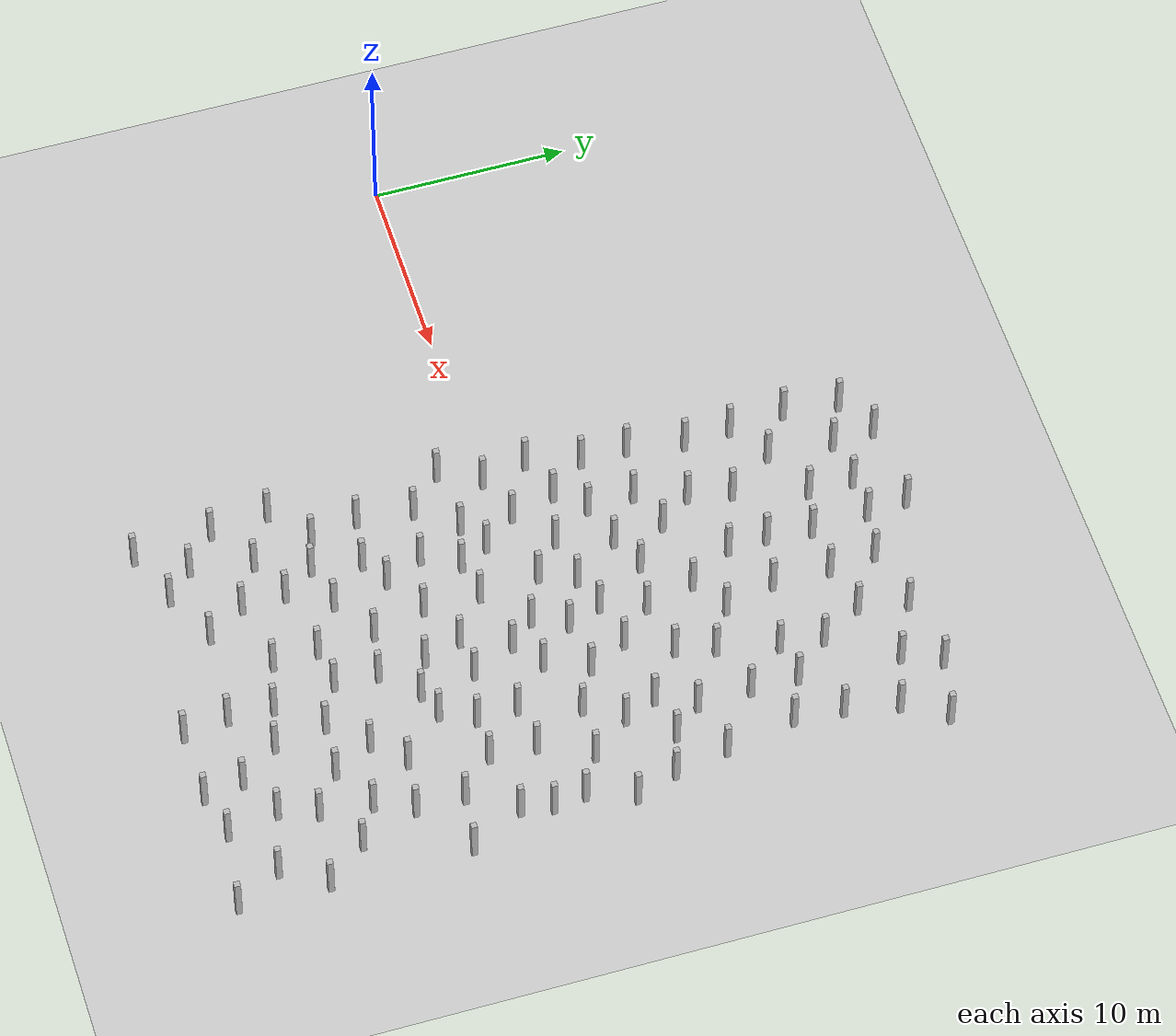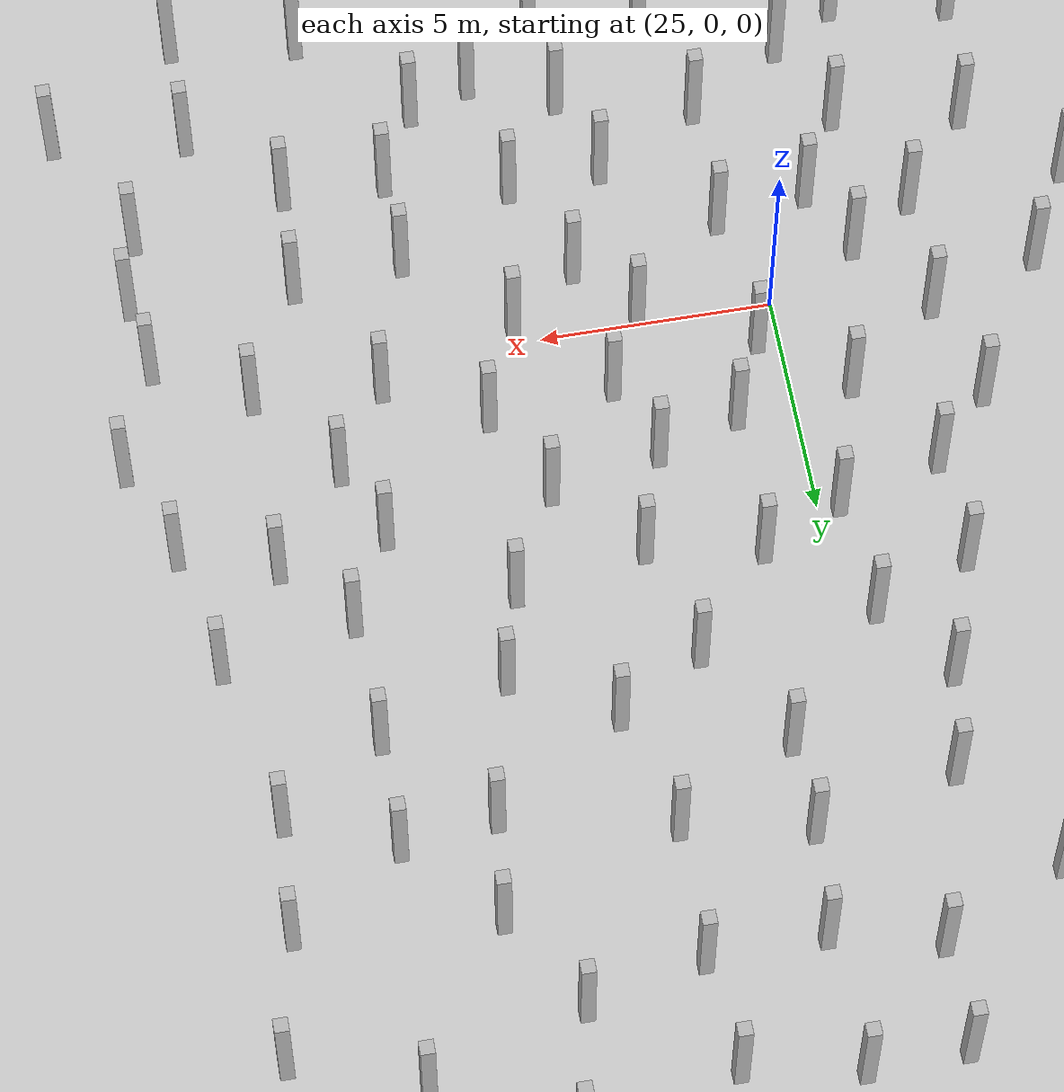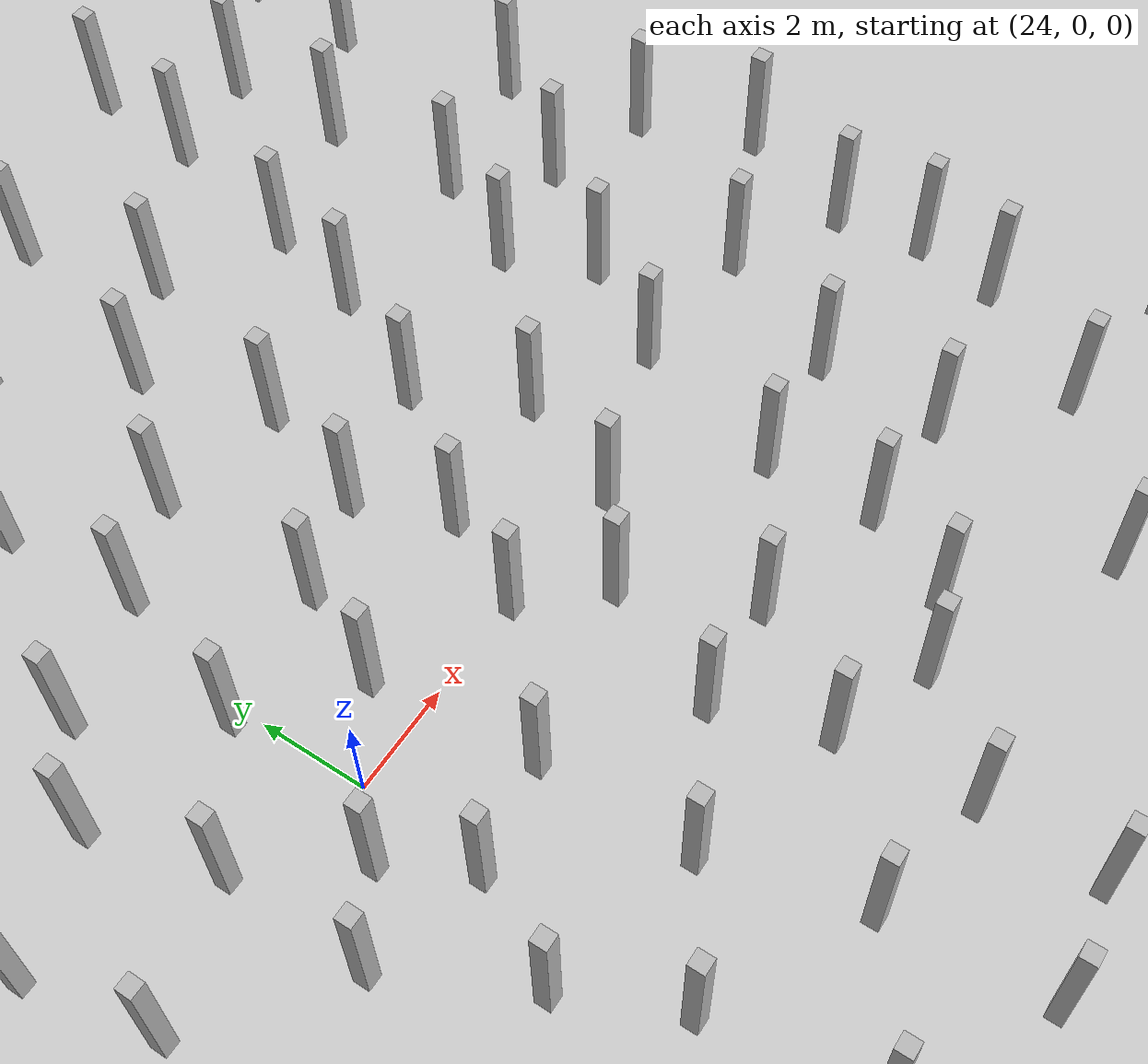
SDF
<sdf version="1.7">
 <world name="random_boxes_100x40_600">
  <model name="ground_plane">
   <static>1</static>
   <link name="link">
    <collision name="collision">
     <geometry><plane><normal>0 0 1</normal><size>100 100</size></plane></geometry>
     <surface><friction><ode><mu>100</mu><mu2>50</mu2></ode></friction></surface>
    </collision>
    <visual name="visual">
     <cast_shadows>0</cast_shadows>
     <geometry><plane><normal>0 0 1</normal><size>100 100</size></plane></geometry>
     <material>
      <script><uri>file://media/materials/scripts/gazebo.material</uri><name>Gazebo/Grey</name></script>
     </material>
    </visual>
   </link>
  </model>
  <model name="box_1">
   <static>1</static>
   <pose>23.067 9.463 1.25 0 -0 0</pose>
   <link name="link">
    <visual name="visual"><geometry><box><size>0.3 0.3 2.5</size></box></geometry></visual>
    <collision name="collision"><geometry><box><size>0.3 0.3 2.5</size></box></geometry></collision>
   </link>
  </model>
  <model name="box_3">
   <static>1</static>
   <pose>19.4562 5.02635 1.25 0 -0 0</pose>
   <link name="link">
    <visual name="visual"><geometry><box><size>0.3 0.3 2.5</size></box></geometry></visual>
    <collision name="collision"><geometry><box><size>0.3 0.3 2.5</size></box></geometry></collision>
   </link>
  </model>
  <model name="box_4">
   <static>1</static>
   <pose>19.4371 7.41929 1.25 0 -0 0</pose>
   <link name="link">
    <visual name="visual"><geometry><box><size>0.3 0.3 2.5</size></box></geometry></visual>
    <collision name="collision"><geometry><box><size>0.3 0.3 2.5</size></box></geometry></collision>
   </link>
  </model>
  <model name="box_5">
   <static>1</static>
   <pose>24.3431 7.76554 1.25 0 -0 0</pose>
   <link name="link">
    <visual name="visual"><geometry><box><size>0.3 0.3 2.5</size></box></geometry></visual>
    <collision name="collision"><geometry><box><size>0.3 0.3 2.5</size></box></geometry></collision>
   </link>
  </model>
  <model name="box_7">
   <static>1</static>
   <pose>23.516 11.668 1.25 0 -0 0</pose>
   <link name="link">
    <visual name="visual"><geometry><box><size>0.3 0.3 2.5</size></box></geometry></visual>
    <collision name="collision"><geometry><box><size>0.3 0.3 2.5</size></box></geometry></collision>
   </link>
  </model>
  <model name="box_8">
   <static>1</static>
   <pose>26.659 10.443 1.25 0 -0 0</pose>
   <link name="link">
    <visual name="visual"><geometry><box><size>0.3 0.3 2.5</size></box></geometry></visual>
    <collision name="collision"><geometry><box><size>0.3 0.3 2.5</size></box></geometry></collision>
   </link>
  </model>
  <model name="box_11">
   <static>1</static>
   <pose>22.2258 6.90257 1.25 0 -0 0</pose>
   <link name="link">
    <visual name="visual"><geometry><box><size>0.3 0.3 2.5</size></box></geometry></visual>
    <collision name="collision"><geometry><box><size>0.3 0.3 2.5</size></box></geometry></collision>
   </link>
  </model>
  <model name="box_12">
   <static>1</static>
   <pose>21.83 14.069 1.25 0 -0 0</pose>
   <link name="link">
    <visual name="visual"><geometry><box><size>0.3 0.3 2.5</size></box></geometry></visual>
    <collision name="collision"><geometry><box><size>0.3 0.3 2.5</size></box></geometry></collision>
   </link>
  </model>
  <model name="box_14">
   <static>1</static>
   <pose>19.557 15.617 1.25 0 -0 0</pose>
   <link name="link">
    <visual name="visual"><geometry><box><size>0.3 0.3 2.5</size></box></geometry></visual>
    <collision name="collision"><geometry><box><size>0.3 0.3 2.5</size></box></geometry></collision>
   </link>
  </model>
  <model name="box_17">
   <static>1</static>
   <pose>28.119 8.132 1.25 0 -0 0</pose>
   <link name="link">
    <visual name="visual"><geometry><box><size>0.3 0.3 2.5</size></box></geometry></visual>
    <collision name="collision"><geometry><box><size>0.3 0.3 2.5</size></box></geometry></collision>
   </link>
  </model>
  <model name="box_18">
   <static>1</static>
   <pose>21.0305 3.09446 1.25 0 -0 0</pose>
   <link name="link">
    <visual name="visual"><geometry><box><size>0.3 0.3 2.5</size></box></geometry></visual>
    <collision name="collision"><geometry><box><size>0.3 0.3 2.5</size></box></geometry></collision>
   </link>
  </model>
  <model name="box_19">
   <static>1</static>
   <pose>19.852 18.463 1.25 0 -0 0</pose>
   <link name="link">
    <visual name="visual"><geometry><box><size>0.3 0.3 2.5</size></box></geometry></visual>
    <collision name="collision"><geometry><box><size>0.3 0.3 2.5</size></box></geometry></collision>
   </link>
  </model>
  <model name="box_20">
   <static>1</static>
   <pose>19.9423 10.3127 1.25 0 -0 0</pose>
   <link name="link">
    <visual name="visual"><geometry><box><size>0.3 0.3 2.5</size></box></geometry></visual>
    <collision name="collision"><geometry><box><size>0.3 0.3 2.5</size></box></geometry></collision>
   </link>
  </model>
  <model name="box_21">
   <static>1</static>
   <pose>24.533 15.338 1.25 0 -0 0</pose>
   <link name="link">
    <visual name="visual"><geometry><box><size>0.3 0.3 2.5</size></box></geometry></visual>
    <collision name="collision"><geometry><box><size>0.3 0.3 2.5</size></box></geometry></collision>
   </link>
  </model>
  <model name="box_22">
   <static>1</static>
   <pose>26.589 12.455 1.25 0 -0 0</pose>
   <link name="link">
    <visual name="visual"><geometry><box><size>0.3 0.3 2.5</size></box></geometry></visual>
    <collision name="collision"><geometry><box><size>0.3 0.3 2.5</size></box></geometry></collision>
   </link>
  </model>
  <model name="box_24">
   <static>1</static>
   <pose>26.821 14.765 1.25 0 -0 0</pose>
   <link name="link">
    <visual name="visual"><geometry><box><size>0.3 0.3 2.5</size></box></geometry></visual>
    <collision name="collision"><geometry><box><size>0.3 0.3 2.5</size></box></geometry></collision>
   </link>
  </model>
  <model name="box_31">
   <static>1</static>
   <pose>29.321 14.858 1.25 0 -0 0</pose>
   <link name="link">
    <visual name="visual"><geometry><box><size>0.3 0.3 2.5</size></box></geometry></visual>
    <collision name="collision"><geometry><box><size>0.3 0.3 2.5</size></box></geometry></collision>
   </link>
  </model>
  <model name="box_32">
   <static>1</static>
   <pose>22.106 17.415 1.25 0 -0 0</pose>
   <link name="link">
    <visual name="visual"><geometry><box><size>0.3 0.3 2.5</size></box></geometry></visual>
    <collision name="collision"><geometry><box><size>0.3 0.3 2.5</size></box></geometry></collision>
   </link>
  </model>
  <model name="box_36">
   <static>1</static>
   <pose>21.923 19.605 1.25 0 -0 0</pose>
   <link name="link">
    <visual name="visual"><geometry><box><size>0.3 0.3 2.5</size></box></geometry></visual>
    <collision name="collision"><geometry><box><size>0.3 0.3 2.5</size></box></geometry></collision>
   </link>
  </model>
  <model name="box_38">
   <static>1</static>
   <pose>31.835 15.458 1.25 0 -0 0</pose>
   <link name="link">
    <visual name="visual"><geometry><box><size>0.3 0.3 2.5</size></box></geometry></visual>
    <collision name="collision"><geometry><box><size>0.3 0.3 2.5</size></box></geometry></collision>
   </link>
  </model>
  <model name="box_39">
   <static>1</static>
   <pose>21.644 0.784753 1.25 0 -0 0</pose>
   <link name="link">
    <visual name="visual"><geometry><box><size>0.3 0.3 2.5</size></box></geometry></visual>
    <collision name="collision"><geometry><box><size>0.3 0.3 2.5</size></box></geometry></collision>
   </link>
  </model>
  <model name="box_40">
   <static>1</static>
   <pose>32.335 17.937 1.25 0 -0 0</pose>
   <link name="link">
    <visual name="visual"><geometry><box><size>0.3 0.3 2.5</size></box></geometry></visual>
    <collision name="collision"><geometry><box><size>0.3 0.3 2.5</size></box></geometry></collision>
   </link>
  </model>
  <model name="box_42">
   <static>1</static>
   <pose>21.5977 -1.87838 1.25 0 -0 0</pose>
   <link name="link">
    <visual name="visual"><geometry><box><size>0.3 0.3 2.5</size></box></geometry></visual>
    <collision name="collision"><geometry><box><size>0.3 0.3 2.5</size></box></geometry></collision>
   </link>
  </model>
  <model name="box_46">
   <static>1</static>
   <pose>29.089 17.269 1.25 0 -0 0</pose>
   <link name="link">
    <visual name="visual"><geometry><box><size>0.3 0.3 2.5</size></box></geometry></visual>
    <collision name="collision"><geometry><box><size>0.3 0.3 2.5</size></box></geometry></collision>
   </link>
  </model>
  <model name="box_49">
   <static>1</static>
   <pose>22.3143 4.50887 1.25 0 -0 0</pose>
   <link name="link">
    <visual name="visual"><geometry><box><size>0.3 0.3 2.5</size></box></geometry></visual>
    <collision name="collision"><geometry><box><size>0.3 0.3 2.5</size></box></geometry></collision>
   </link>
  </model>
  <model name="box_50">
   <static>1</static>
   <pose>19.23 -0.019738 1.25 0 -0 0</pose>
   <link name="link">
    <visual name="visual"><geometry><box><size>0.3 0.3 2.5</size></box></geometry></visual>
    <collision name="collision"><geometry><box><size>0.3 0.3 2.5</size></box></geometry></collision>
   </link>
  </model>
  <model name="box_53">
   <static>1</static>
   <pose>33.13 13.301 1.25 0 -0 0</pose>
   <link name="link">
    <visual name="visual"><geometry><box><size>0.3 0.3 2.5</size></box></geometry></visual>
    <collision name="collision"><geometry><box><size>0.3 0.3 2.5</size></box></geometry></collision>
   </link>
  </model>
  <model name="box_54">
   <static>1</static>
   <pose>29.284 11.9067 1.25 0 -0 0</pose>
   <link name="link">
    <visual name="visual"><geometry><box><size>0.3 0.3 2.5</size></box></geometry></visual>
    <collision name="collision"><geometry><box><size>0.3 0.3 2.5</size></box></geometry></collision>
   </link>
  </model>
  <model name="box_56">
   <static>1</static>
   <pose>30.006 9.267 1.25 0 -0 0</pose>
   <link name="link">
    <visual name="visual"><geometry><box><size>0.3 0.3 2.5</size></box></geometry></visual>
    <collision name="collision"><geometry><box><size>0.3 0.3 2.5</size></box></geometry></collision>
   </link>
  </model>
  <model name="box_69">
   <static>1</static>
   <pose>32.147 8.051 1.25 0 -0 0</pose>
   <link name="link">
    <visual name="visual"><geometry><box><size>0.3 0.3 2.5</size></box></geometry></visual>
    <collision name="collision"><geometry><box><size>0.3 0.3 2.5</size></box></geometry></collision>
   </link>
  </model>
  <model name="box_73">
   <static>1</static>
   <pose>34.911 11.383 1.25 0 -0 0</pose>
   <link name="link">
    <visual name="visual"><geometry><box><size>0.3 0.3 2.5</size></box></geometry></visual>
    <collision name="collision"><geometry><box><size>0.3 0.3 2.5</size></box></geometry></collision>
   </link>
  </model>
  <model name="box_77">
   <static>1</static>
   <pose>23.0122 -0.959011 1.25 0 -0 0</pose>
   <link name="link">
    <visual name="visual"><geometry><box><size>0.3 0.3 2.5</size></box></geometry></visual>
    <collision name="collision"><geometry><box><size>0.3 0.3 2.5</size></box></geometry></collision>
   </link>
  </model>
  <model name="box_81">
   <static>1</static>
   <pose>26.273 2.74732 1.25 0 -0 0</pose>
   <link name="link">
    <visual name="visual"><geometry><box><size>0.3 0.3 2.5</size></box></geometry></visual>
    <collision name="collision"><geometry><box><size>0.3 0.3 2.5</size></box></geometry></collision>
   </link>
  </model>
  <model name="box_84">
   <static>1</static>
   <pose>34.91 8.945 1.25 0 -0 0</pose>
   <link name="link">
    <visual name="visual"><geometry><box><size>0.3 0.3 2.5</size></box></geometry></visual>
    <collision name="collision"><geometry><box><size>0.3 0.3 2.5</size></box></geometry></collision>
   </link>
  </model>
  <model name="box_89">
   <static>1</static>
   <pose>24.5668 5.16646 1.25 0 -0 0</pose>
   <link name="link">
    <visual name="visual"><geometry><box><size>0.3 0.3 2.5</size></box></geometry></visual>
    <collision name="collision"><geometry><box><size>0.3 0.3 2.5</size></box></geometry></collision>
   </link>
  </model>
  <model name="box_90">
   <static>1</static>
   <pose>32.875 11.088 1.25 0 -0 0</pose>
   <link name="link">
    <visual name="visual"><geometry><box><size>0.3 0.3 2.5</size></box></geometry></visual>
    <collision name="collision"><geometry><box><size>0.3 0.3 2.5</size></box></geometry></collision>
   </link>
  </model>
  <model name="box_91">
   <static>1</static>
   <pose>35.016 6.193 1.25 0 -0 0</pose>
   <link name="link">
    <visual name="visual"><geometry><box><size>0.3 0.3 2.5</size></box></geometry></visual>
    <collision name="collision"><geometry><box><size>0.3 0.3 2.5</size></box></geometry></collision>
   </link>
  </model>
  <model name="box_93">
   <static>1</static>
   <pose>37.881 6.78 1.25 0 -0 0</pose>
   <link name="link">
    <visual name="visual"><geometry><box><size>0.3 0.3 2.5</size></box></geometry></visual>
    <collision name="collision"><geometry><box><size>0.3 0.3 2.5</size></box></geometry></collision>
   </link>
  </model>
  <model name="box_94">
   <static>1</static>
   <pose>26.3417 5.98152 1.25 0 -0 0</pose>
   <link name="link">
    <visual name="visual"><geometry><box><size>0.3 0.3 2.5</size></box></geometry></visual>
    <collision name="collision"><geometry><box><size>0.3 0.3 2.5</size></box></geometry></collision>
   </link>
  </model>
  <model name="box_97">
   <static>1</static>
   <pose>23.7658 -2.44434 1.25 0 -0 0</pose>
   <link name="link">
    <visual name="visual"><geometry><box><size>0.3 0.3 2.5</size></box></geometry></visual>
    <collision name="collision"><geometry><box><size>0.3 0.3 2.5</size></box></geometry></collision>
   </link>
  </model>
  <model name="box_100">
   <static>1</static>
   <pose>26.641 17.713 1.25 0 -0 0</pose>
   <link name="link">
    <visual name="visual"><geometry><box><size>0.3 0.3 2.5</size></box></geometry></visual>
    <collision name="collision"><geometry><box><size>0.3 0.3 2.5</size></box></geometry></collision>
   </link>
  </model>
  <model name="box_102">
   <static>1</static>
   <pose>25.4885 0.979209 1.25 0 -0 0</pose>
   <link name="link">
    <visual name="visual"><geometry><box><size>0.3 0.3 2.5</size></box></geometry></visual>
    <collision name="collision"><geometry><box><size>0.3 0.3 2.5</size></box></geometry></collision>
   </link>
  </model>
  <model name="box_104">
   <static>1</static>
   <pose>28.0736 3.34242 1.25 0 -0 0</pose>
   <link name="link">
    <visual name="visual"><geometry><box><size>0.3 0.3 2.5</size></box></geometry></visual>
    <collision name="collision"><geometry><box><size>0.3 0.3 2.5</size></box></geometry></collision>
   </link>
  </model>
  <model name="box_107">
   <static>1</static>
   <pose>37.163 10.414 1.25 0 -0 0</pose>
   <link name="link">
    <visual name="visual"><geometry><box><size>0.3 0.3 2.5</size></box></geometry></visual>
    <collision name="collision"><geometry><box><size>0.3 0.3 2.5</size></box></geometry></collision>
   </link>
  </model>
  <model name="box_109">
   <static>1</static>
   <pose>38.416 4.005 1.25 0 -0 0</pose>
   <link name="link">
    <visual name="visual"><geometry><box><size>0.3 0.3 2.5</size></box></geometry></visual>
    <collision name="collision"><geometry><box><size>0.3 0.3 2.5</size></box></geometry></collision>
   </link>
  </model>
  <model name="box_113">
   <static>1</static>
   <pose>27.8996 -0.118362 1.25 0 -0 0</pose>
   <link name="link">
    <visual name="visual"><geometry><box><size>0.3 0.3 2.5</size></box></geometry></visual>
    <collision name="collision"><geometry><box><size>0.3 0.3 2.5</size></box></geometry></collision>
   </link>
  </model>
  <model name="box_118">
   <static>1</static>
   <pose>30.4683 3.85748 1.25 0 -0 0</pose>
   <link name="link">
    <visual name="visual"><geometry><box><size>0.3 0.3 2.5</size></box></geometry></visual>
    <collision name="collision"><geometry><box><size>0.3 0.3 2.5</size></box></geometry></collision>
   </link>
  </model>
  <model name="box_119">
   <static>1</static>
   <pose>19.6916 -6.69948 1.25 0 -0 0</pose>
   <link name="link">
    <visual name="visual"><geometry><box><size>0.3 0.3 2.5</size></box></geometry></visual>
    <collision name="collision"><geometry><box><size>0.3 0.3 2.5</size></box></geometry></collision>
   </link>
  </model>
  <model name="box_124">
   <static>1</static>
   <pose>33.573 0.771 1.25 0 -0 0</pose>
   <link name="link">
    <visual name="visual"><geometry><box><size>0.3 0.3 2.5</size></box></geometry></visual>
    <collision name="collision"><geometry><box><size>0.3 0.3 2.5</size></box></geometry></collision>
   </link>
  </model>
  <model name="box_126">
   <static>1</static>
   <pose>37.349 12.912 1.25 0 -0 0</pose>
   <link name="link">
    <visual name="visual"><geometry><box><size>0.3 0.3 2.5</size></box></geometry></visual>
    <collision name="collision"><geometry><box><size>0.3 0.3 2.5</size></box></geometry></collision>
   </link>
  </model>
  <model name="box_129">
   <static>1</static>
   <pose>18.0386 -10.8236 1.25 0 -0 0</pose>
   <link name="link">
    <visual name="visual"><geometry><box><size>0.3 0.3 2.5</size></box></geometry></visual>
    <collision name="collision"><geometry><box><size>0.3 0.3 2.5</size></box></geometry></collision>
   </link>
  </model>
  <model name="box_132">
   <static>1</static>
   <pose>37.889 15.621 1.25 0 -0 0</pose>
   <link name="link">
    <visual name="visual"><geometry><box><size>0.3 0.3 2.5</size></box></geometry></visual>
    <collision name="collision"><geometry><box><size>0.3 0.3 2.5</size></box></geometry></collision>
   </link>
  </model>
  <model name="box_140">
   <static>1</static>
   <pose>34.7509 2.61464 1.25 0 -0 0</pose>
   <link name="link">
    <visual name="visual"><geometry><box><size>0.3 0.3 2.5</size></box></geometry></visual>
    <collision name="collision"><geometry><box><size>0.3 0.3 2.5</size></box></geometry></collision>
   </link>
  </model>
  <model name="box_145">
   <static>1</static>
   <pose>35.193 16.567 1.25 0 -0 0</pose>
   <link name="link">
    <visual name="visual"><geometry><box><size>0.3 0.3 2.5</size></box></geometry></visual>
    <collision name="collision"><geometry><box><size>0.3 0.3 2.5</size></box></geometry></collision>
   </link>
  </model>
  <model name="box_150">
   <static>1</static>
   <pose>31.61 6.099 1.25 0 -0 0</pose>
   <link name="link">
    <visual name="visual"><geometry><box><size>0.3 0.3 2.5</size></box></geometry></visual>
    <collision name="collision"><geometry><box><size>0.3 0.3 2.5</size></box></geometry></collision>
   </link>
  </model>
  <model name="box_154">
   <static>1</static>
   <pose>22.7822 -4.28904 1.25 0 -0 0</pose>
   <link name="link">
    <visual name="visual"><geometry><box><size>0.3 0.3 2.5</size></box></geometry></visual>
    <collision name="collision"><geometry><box><size>0.3 0.3 2.5</size></box></geometry></collision>
   </link>
  </model>
  <model name="box_156">
   <static>1</static>
   <pose>39.22 17.744 1.25 0 -0 0</pose>
   <link name="link">
    <visual name="visual"><geometry><box><size>0.3 0.3 2.5</size></box></geometry></visual>
    <collision name="collision"><geometry><box><size>0.3 0.3 2.5</size></box></geometry></collision>
   </link>
  </model>
  <model name="box_161">
   <static>1</static>
   <pose>20.1401 -9.13981 1.25 0 -0 0</pose>
   <link name="link">
    <visual name="visual"><geometry><box><size>0.3 0.3 2.5</size></box></geometry></visual>
    <collision name="collision"><geometry><box><size>0.3 0.3 2.5</size></box></geometry></collision>
   </link>
  </model>
  <model name="box_162">
   <static>1</static>
   <pose>18.7509 2.3198 1.25 0 -0 0</pose>
   <link name="link">
    <visual name="visual"><geometry><box><size>0.3 0.3 2.5</size></box></geometry></visual>
    <collision name="collision"><geometry><box><size>0.3 0.3 2.5</size></box></geometry></collision>
   </link>
  </model>
  <model name="box_163">
   <static>1</static>
   <pose>25.7668 -2.09854 1.25 0 -0 0</pose>
   <link name="link">
    <visual name="visual"><geometry><box><size>0.3 0.3 2.5</size></box></geometry></visual>
    <collision name="collision"><geometry><box><size>0.3 0.3 2.5</size></box></geometry></collision>
   </link>
  </model>
  <model name="box_170">
   <static>1</static>
   <pose>28.6677 -5.76394 1.25 0 -0 0</pose>
   <link name="link">
    <visual name="visual"><geometry><box><size>0.3 0.3 2.5</size></box></geometry></visual>
    <collision name="collision"><geometry><box><size>0.3 0.3 2.5</size></box></geometry></collision>
   </link>
  </model>
  <model name="box_174">
   <static>1</static>
   <pose>39.207 1.836 1.25 0 -0 0</pose>
   <link name="link">
    <visual name="visual"><geometry><box><size>0.3 0.3 2.5</size></box></geometry></visual>
    <collision name="collision"><geometry><box><size>0.3 0.3 2.5</size></box></geometry></collision>
   </link>
  </model>
  <model name="box_175">
   <static>1</static>
   <pose>36.367 4.686 1.25 0 -0 0</pose>
   <link name="link">
    <visual name="visual"><geometry><box><size>0.3 0.3 2.5</size></box></geometry></visual>
    <collision name="collision"><geometry><box><size>0.3 0.3 2.5</size></box></geometry></collision>
   </link>
  </model>
  <model name="box_176">
   <static>1</static>
   <pose>20.1275 -15.3876 1.25 0 -0 0</pose>
   <link name="link">
    <visual name="visual"><geometry><box><size>0.3 0.3 2.5</size></box></geometry></visual>
    <collision name="collision"><geometry><box><size>0.3 0.3 2.5</size></box></geometry></collision>
   </link>
  </model>
  <model name="box_177">
   <static>1</static>
   <pose>18.1384 -2.09655 1.25 0 -0 0</pose>
   <link name="link">
    <visual name="visual"><geometry><box><size>0.3 0.3 2.5</size></box></geometry></visual>
    <collision name="collision"><geometry><box><size>0.3 0.3 2.5</size></box></geometry></collision>
   </link>
  </model>
  <model name="box_182">
   <static>1</static>
   <pose>38.33 -0.523 1.25 0 -0 0</pose>
   <link name="link">
    <visual name="visual"><geometry><box><size>0.3 0.3 2.5</size></box></geometry></visual>
    <collision name="collision"><geometry><box><size>0.3 0.3 2.5</size></box></geometry></collision>
   </link>
  </model>
  <model name="box_183">
   <static>1</static>
   <pose>36.052 18.489 1.25 0 -0 0</pose>
   <link name="link">
    <visual name="visual"><geometry><box><size>0.3 0.3 2.5</size></box></geometry></visual>
    <collision name="collision"><geometry><box><size>0.3 0.3 2.5</size></box></geometry></collision>
   </link>
  </model>
  <model name="box_185">
   <static>1</static>
   <pose>24.543 17.644 1.25 0 -0 0</pose>
   <link name="link">
    <visual name="visual"><geometry><box><size>0.3 0.3 2.5</size></box></geometry></visual>
    <collision name="collision"><geometry><box><size>0.3 0.3 2.5</size></box></geometry></collision>
   </link>
  </model>
  <model name="box_187">
   <static>1</static>
   <pose>18.3267 -13.8062 1.25 0 -0 0</pose>
   <link name="link">
    <visual name="visual"><geometry><box><size>0.3 0.3 2.5</size></box></geometry></visual>
    <collision name="collision"><geometry><box><size>0.3 0.3 2.5</size></box></geometry></collision>
   </link>
  </model>
  <model name="box_192">
   <static>1</static>
   <pose>25.7464 -4.98388 1.25 0 -0 0</pose>
   <link name="link">
    <visual name="visual"><geometry><box><size>0.3 0.3 2.5</size></box></geometry></visual>
    <collision name="collision"><geometry><box><size>0.3 0.3 2.5</size></box></geometry></collision>
   </link>
  </model>
  <model name="box_194">
   <static>1</static>
   <pose>38.5709 -2.18507 1.25 0 -0 0</pose>
   <link name="link">
    <visual name="visual"><geometry><box><size>0.3 0.3 2.5</size></box></geometry></visual>
    <collision name="collision"><geometry><box><size>0.3 0.3 2.5</size></box></geometry></collision>
   </link>
  </model>
  <model name="box_196">
   <static>1</static>
   <pose>23.0427 -13.4997 1.25 0 -0 0</pose>
   <link name="link">
    <visual name="visual"><geometry><box><size>0.3 0.3 2.5</size></box></geometry></visual>
    <collision name="collision"><geometry><box><size>0.3 0.3 2.5</size></box></geometry></collision>
   </link>
  </model>
  <model name="box_199">
   <static>1</static>
   <pose>20.7455 -12.2549 1.25 0 -0 0</pose>
   <link name="link">
    <visual name="visual"><geometry><box><size>0.3 0.3 2.5</size></box></geometry></visual>
    <collision name="collision"><geometry><box><size>0.3 0.3 2.5</size></box></geometry></collision>
   </link>
  </model>
  <model name="box_204">
   <static>1</static>
   <pose>30.5025 -6.4925 1.25 0 -0 0</pose>
   <link name="link">
    <visual name="visual"><geometry><box><size>0.3 0.3 2.5</size></box></geometry></visual>
    <collision name="collision"><geometry><box><size>0.3 0.3 2.5</size></box></geometry></collision>
   </link>
  </model>
  <model name="box_205">
   <static>1</static>
   <pose>38.255 -3.784 1.25 0 -0 0</pose>
   <link name="link">
    <visual name="visual"><geometry><box><size>0.3 0.3 2.5</size></box></geometry></visual>
    <collision name="collision"><geometry><box><size>0.3 0.3 2.5</size></box></geometry></collision>
   </link>
  </model>
  <model name="box_207">
   <static>1</static>
   <pose>31.4512 1.87514 1.25 0 -0 0</pose>
   <link name="link">
    <visual name="visual"><geometry><box><size>0.3 0.3 2.5</size></box></geometry></visual>
    <collision name="collision"><geometry><box><size>0.3 0.3 2.5</size></box></geometry></collision>
   </link>
  </model>
  <model name="box_210">
   <static>1</static>
   <pose>22.9936 -11.2659 1.25 0 -0 0</pose>
   <link name="link">
    <visual name="visual"><geometry><box><size>0.3 0.3 2.5</size></box></geometry></visual>
    <collision name="collision"><geometry><box><size>0.3 0.3 2.5</size></box></geometry></collision>
   </link>
  </model>
  <model name="box_211">
   <static>1</static>
   <pose>22.254 -7.123 1.25 0 -0 0</pose>
   <link name="link">
    <visual name="visual"><geometry><box><size>0.3 0.3 2.5</size></box></geometry></visual>
    <collision name="collision"><geometry><box><size>0.3 0.3 2.5</size></box></geometry></collision>
   </link>
  </model>
  <model name="box_213">
   <static>1</static>
   <pose>36.804 -6.117 1.25 0 -0 0</pose>
   <link name="link">
    <visual name="visual"><geometry><box><size>0.3 0.3 2.5</size></box></geometry></visual>
    <collision name="collision"><geometry><box><size>0.3 0.3 2.5</size></box></geometry></collision>
   </link>
  </model>
  <model name="box_214">
   <static>1</static>
   <pose>24.2966 -15.4514 1.25 0 -0 0</pose>
   <link name="link">
    <visual name="visual"><geometry><box><size>0.3 0.3 2.5</size></box></geometry></visual>
    <collision name="collision"><geometry><box><size>0.3 0.3 2.5</size></box></geometry></collision>
   </link>
  </model>
  <model name="box_225">
   <static>1</static>
   <pose>34.917 -4.34913 1.25 0 -0 0</pose>
   <link name="link">
    <visual name="visual"><geometry><box><size>0.3 0.3 2.5</size></box></geometry></visual>
    <collision name="collision"><geometry><box><size>0.3 0.3 2.5</size></box></geometry></collision>
   </link>
  </model>
  <model name="box_226">
   <static>1</static>
   <pose>26.723 -12.938 1.25 0 -0 0</pose>
   <link name="link">
    <visual name="visual"><geometry><box><size>0.3 0.3 2.5</size></box></geometry></visual>
    <collision name="collision"><geometry><box><size>0.3 0.3 2.5</size></box></geometry></collision>
   </link>
  </model>
  <model name="box_229">
   <static>1</static>
   <pose>19.7898 12.7272 1.25 0 -0 0</pose>
   <link name="link">
    <visual name="visual"><geometry><box><size>0.3 0.3 2.5</size></box></geometry></visual>
    <collision name="collision"><geometry><box><size>0.3 0.3 2.5</size></box></geometry></collision>
   </link>
  </model>
  <model name="box_230">
   <static>1</static>
   <pose>26.63 -10.632 1.25 0 -0 0</pose>
   <link name="link">
    <visual name="visual"><geometry><box><size>0.3 0.3 2.5</size></box></geometry></visual>
    <collision name="collision"><geometry><box><size>0.3 0.3 2.5</size></box></geometry></collision>
   </link>
  </model>
  <model name="box_231">
   <static>1</static>
   <pose>21.5473 -16.7579 1.25 0 -0 0</pose>
   <link name="link">
    <visual name="visual"><geometry><box><size>0.3 0.3 2.5</size></box></geometry></visual>
    <collision name="collision"><geometry><box><size>0.3 0.3 2.5</size></box></geometry></collision>
   </link>
  </model>
  <model name="box_233">
   <static>1</static>
   <pose>31.8498 -6.00232 1.25 0 -0 0</pose>
   <link name="link">
    <visual name="visual"><geometry><box><size>0.3 0.3 2.5</size></box></geometry></visual>
    <collision name="collision"><geometry><box><size>0.3 0.3 2.5</size></box></geometry></collision>
   </link>
  </model>
  <model name="box_238">
   <static>1</static>
   <pose>28.0352 -3.81003 1.25 0 -0 0</pose>
   <link name="link">
    <visual name="visual"><geometry><box><size>0.3 0.3 2.5</size></box></geometry></visual>
    <collision name="collision"><geometry><box><size>0.3 0.3 2.5</size></box></geometry></collision>
   </link>
  </model>
  <model name="box_248">
   <static>1</static>
   <pose>29.0616 -1.42519 1.25 0 -0 0</pose>
   <link name="link">
    <visual name="visual"><geometry><box><size>0.3 0.3 2.5</size></box></geometry></visual>
    <collision name="collision"><geometry><box><size>0.3 0.3 2.5</size></box></geometry></collision>
   </link>
  </model>
  <model name="box_250">
   <static>1</static>
   <pose>34.067 -8.198 1.25 0 -0 0</pose>
   <link name="link">
    <visual name="visual"><geometry><box><size>0.3 0.3 2.5</size></box></geometry></visual>
    <collision name="collision"><geometry><box><size>0.3 0.3 2.5</size></box></geometry></collision>
   </link>
  </model>
  <model name="box_251">
   <static>1</static>
   <pose>39.675 -6.537 1.25 0 -0 0</pose>
   <link name="link">
    <visual name="visual"><geometry><box><size>0.3 0.3 2.5</size></box></geometry></visual>
    <collision name="collision"><geometry><box><size>0.3 0.3 2.5</size></box></geometry></collision>
   </link>
  </model>
  <model name="box_252">
   <static>1</static>
   <pose>28.717 -10.404 1.25 0 -0 0</pose>
   <link name="link">
    <visual name="visual"><geometry><box><size>0.3 0.3 2.5</size></box></geometry></visual>
    <collision name="collision"><geometry><box><size>0.3 0.3 2.5</size></box></geometry></collision>
   </link>
  </model>
  <model name="box_254">
   <static>1</static>
   <pose>26.457 19.814 1.25 0 -0 0</pose>
   <link name="link">
    <visual name="visual"><geometry><box><size>0.3 0.3 2.5</size></box></geometry></visual>
    <collision name="collision"><geometry><box><size>0.3 0.3 2.5</size></box></geometry></collision>
   </link>
  </model>
  <model name="box_256">
   <static>1</static>
   <pose>36.793 -8.59 1.25 0 -0 0</pose>
   <link name="link">
    <visual name="visual"><geometry><box><size>0.3 0.3 2.5</size></box></geometry></visual>
    <collision name="collision"><geometry><box><size>0.3 0.3 2.5</size></box></geometry></collision>
   </link>
  </model>
  <model name="box_258">
   <static>1</static>
   <pose>29.467 -18.176 1.25 0 -0 0</pose>
   <link name="link">
    <visual name="visual"><geometry><box><size>0.3 0.3 2.5</size></box></geometry></visual>
    <collision name="collision"><geometry><box><size>0.3 0.3 2.5</size></box></geometry></collision>
   </link>
  </model>
  <model name="box_259">
   <static>1</static>
   <pose>30.945 -11.455 1.25 0 -0 0</pose>
   <link name="link">
    <visual name="visual"><geometry><box><size>0.3 0.3 2.5</size></box></geometry></visual>
    <collision name="collision"><geometry><box><size>0.3 0.3 2.5</size></box></geometry></collision>
   </link>
  </model>
  <model name="box_263">
   <static>1</static>
   <pose>30.0721 -3.66795 1.25 0 -0 0</pose>
   <link name="link">
    <visual name="visual"><geometry><box><size>0.3 0.3 2.5</size></box></geometry></visual>
    <collision name="collision"><geometry><box><size>0.3 0.3 2.5</size></box></geometry></collision>
   </link>
  </model>
  <model name="box_267">
   <static>1</static>
   <pose>33.642 -11.712 1.25 0 -0 0</pose>
   <link name="link">
    <visual name="visual"><geometry><box><size>0.3 0.3 2.5</size></box></geometry></visual>
    <collision name="collision"><geometry><box><size>0.3 0.3 2.5</size></box></geometry></collision>
   </link>
  </model>
  <model name="box_268">
   <static>1</static>
   <pose>26.45 -7.715 1.25 0 -0 0</pose>
   <link name="link">
    <visual name="visual"><geometry><box><size>0.3 0.3 2.5</size></box></geometry></visual>
    <collision name="collision"><geometry><box><size>0.3 0.3 2.5</size></box></geometry></collision>
   </link>
  </model>
  <model name="box_269">
   <static>1</static>
   <pose>34.046 4.296 1.25 0 -0 0</pose>
   <link name="link">
    <visual name="visual"><geometry><box><size>0.3 0.3 2.5</size></box></geometry></visual>
    <collision name="collision"><geometry><box><size>0.3 0.3 2.5</size></box></geometry></collision>
   </link>
  </model>
  <model name="box_270">
   <static>1</static>
   <pose>31.337 -14.118 1.25 0 -0 0</pose>
   <link name="link">
    <visual name="visual"><geometry><box><size>0.3 0.3 2.5</size></box></geometry></visual>
    <collision name="collision"><geometry><box><size>0.3 0.3 2.5</size></box></geometry></collision>
   </link>
  </model>
  <model name="box_275">
   <static>1</static>
   <pose>21.8452 -9.63253 1.25 0 -0 0</pose>
   <link name="link">
    <visual name="visual"><geometry><box><size>0.3 0.3 2.5</size></box></geometry></visual>
    <collision name="collision"><geometry><box><size>0.3 0.3 2.5</size></box></geometry></collision>
   </link>
  </model>
  <model name="box_283">
   <static>1</static>
   <pose>20.0281 -3.84402 1.25 0 -0 0</pose>
   <link name="link">
    <visual name="visual"><geometry><box><size>0.3 0.3 2.5</size></box></geometry></visual>
    <collision name="collision"><geometry><box><size>0.3 0.3 2.5</size></box></geometry></collision>
   </link>
  </model>
  <model name="box_289">
   <static>1</static>
   <pose>28.792 5.55967 1.25 0 -0 0</pose>
   <link name="link">
    <visual name="visual"><geometry><box><size>0.3 0.3 2.5</size></box></geometry></visual>
    <collision name="collision"><geometry><box><size>0.3 0.3 2.5</size></box></geometry></collision>
   </link>
  </model>
  <model name="box_292">
   <static>1</static>
   <pose>35.0416 -1.98153 1.25 0 -0 0</pose>
   <link name="link">
    <visual name="visual"><geometry><box><size>0.3 0.3 2.5</size></box></geometry></visual>
    <collision name="collision"><geometry><box><size>0.3 0.3 2.5</size></box></geometry></collision>
   </link>
  </model>
  <model name="box_293">
   <static>1</static>
   <pose>32.7038 -4.30978 1.25 0 -0 0</pose>
   <link name="link">
    <visual name="visual"><geometry><box><size>0.3 0.3 2.5</size></box></geometry></visual>
    <collision name="collision"><geometry><box><size>0.3 0.3 2.5</size></box></geometry></collision>
   </link>
  </model>
  <model name="box_305">
   <static>1</static>
   <pose>35.667 -13.091 1.25 0 -0 0</pose>
   <link name="link">
    <visual name="visual"><geometry><box><size>0.3 0.3 2.5</size></box></geometry></visual>
    <collision name="collision"><geometry><box><size>0.3 0.3 2.5</size></box></geometry></collision>
   </link>
  </model>
  <model name="box_308">
   <static>1</static>
   <pose>33.179 -18.154 1.25 0 -0 0</pose>
   <link name="link">
    <visual name="visual"><geometry><box><size>0.3 0.3 2.5</size></box></geometry></visual>
    <collision name="collision"><geometry><box><size>0.3 0.3 2.5</size></box></geometry></collision>
   </link>
  </model>
  <model name="box_313">
   <static>1</static>
   <pose>37.901 -11.561 1.25 0 -0 0</pose>
   <link name="link">
    <visual name="visual"><geometry><box><size>0.3 0.3 2.5</size></box></geometry></visual>
    <collision name="collision"><geometry><box><size>0.3 0.3 2.5</size></box></geometry></collision>
   </link>
  </model>
  <model name="box_314">
   <static>1</static>
   <pose>35.014 -15.005 1.25 0 -0 0</pose>
   <link name="link">
    <visual name="visual"><geometry><box><size>0.3 0.3 2.5</size></box></geometry></visual>
    <collision name="collision"><geometry><box><size>0.3 0.3 2.5</size></box></geometry></collision>
   </link>
  </model>
  <model name="box_319">
   <static>1</static>
   <pose>23.6607 -6.25802 1.25 0 -0 0</pose>
   <link name="link">
    <visual name="visual"><geometry><box><size>0.3 0.3 2.5</size></box></geometry></visual>
    <collision name="collision"><geometry><box><size>0.3 0.3 2.5</size></box></geometry></collision>
   </link>
  </model>
  <model name="box_322">
   <static>1</static>
   <pose>24.176 -9.121 1.25 0 -0 0</pose>
   <link name="link">
    <visual name="visual"><geometry><box><size>0.3 0.3 2.5</size></box></geometry></visual>
    <collision name="collision"><geometry><box><size>0.3 0.3 2.5</size></box></geometry></collision>
   </link>
  </model>
  <model name="box_323">
   <static>1</static>
   <pose>32.881 -16.139 1.25 0 -0 0</pose>
   <link name="link">
    <visual name="visual"><geometry><box><size>0.3 0.3 2.5</size></box></geometry></visual>
    <collision name="collision"><geometry><box><size>0.3 0.3 2.5</size></box></geometry></collision>
   </link>
  </model>
  <model name="box_326">
   <static>1</static>
   <pose>29.147 -15.884 1.25 0 -0 0</pose>
   <link name="link">
    <visual name="visual"><geometry><box><size>0.3 0.3 2.5</size></box></geometry></visual>
    <collision name="collision"><geometry><box><size>0.3 0.3 2.5</size></box></geometry></collision>
   </link>
  </model>
  <model name="box_330">
   <static>1</static>
   <pose>29.221 -13.592 1.25 0 -0 0</pose>
   <link name="link">
    <visual name="visual"><geometry><box><size>0.3 0.3 2.5</size></box></geometry></visual>
    <collision name="collision"><geometry><box><size>0.3 0.3 2.5</size></box></geometry></collision>
   </link>
  </model>
  <model name="box_341">
   <static>1</static>
   <pose>35.508 -17.601 1.25 0 -0 0</pose>
   <link name="link">
    <visual name="visual"><geometry><box><size>0.3 0.3 2.5</size></box></geometry></visual>
    <collision name="collision"><geometry><box><size>0.3 0.3 2.5</size></box></geometry></collision>
   </link>
  </model>
  <model name="box_344">
   <static>1</static>
   <pose>39.641 -13.654 1.25 0 -0 0</pose>
   <link name="link">
    <visual name="visual"><geometry><box><size>0.3 0.3 2.5</size></box></geometry></visual>
    <collision name="collision"><geometry><box><size>0.3 0.3 2.5</size></box></geometry></collision>
   </link>
  </model>
  <model name="box_352">
   <static>1</static>
   <pose>30.5585 -0.300314 1.25 0 -0 0</pose>
   <link name="link">
    <visual name="visual"><geometry><box><size>0.3 0.3 2.5</size></box></geometry></visual>
    <collision name="collision"><geometry><box><size>0.3 0.3 2.5</size></box></geometry></collision>
   </link>
  </model>
  <model name="box_358">
   <static>1</static>
   <pose>38.215 -15.844 1.25 0 -0 0</pose>
   <link name="link">
    <visual name="visual"><geometry><box><size>0.3 0.3 2.5</size></box></geometry></visual>
    <collision name="collision"><geometry><box><size>0.3 0.3 2.5</size></box></geometry></collision>
   </link>
  </model>
  <model name="box_373">
   <static>1</static>
   <pose>39.562 -18.199 1.25 0 -0 0</pose>
   <link name="link">
    <visual name="visual"><geometry><box><size>0.3 0.3 2.5</size></box></geometry></visual>
    <collision name="collision"><geometry><box><size>0.3 0.3 2.5</size></box></geometry></collision>
   </link>
  </model>
  <model name="box_375">
   <static>1</static>
   <pose>28.838 -8.189 1.25 0 -0 0</pose>
   <link name="link">
    <visual name="visual"><geometry><box><size>0.3 0.3 2.5</size></box></geometry></visual>
    <collision name="collision"><geometry><box><size>0.3 0.3 2.5</size></box></geometry></collision>
   </link>
  </model>
  <model name="box_378">
   <static>1</static>
   <pose>35.938 -10.485 1.25 0 -0 0</pose>
   <link name="link">
    <visual name="visual"><geometry><box><size>0.3 0.3 2.5</size></box></geometry></visual>
    <collision name="collision"><geometry><box><size>0.3 0.3 2.5</size></box></geometry></collision>
   </link>
  </model>
  <model name="box_384">
   <static>1</static>
   <pose>32.599 -9.681 1.25 0 -0 0</pose>
   <link name="link">
    <visual name="visual"><geometry><box><size>0.3 0.3 2.5</size></box></geometry></visual>
    <collision name="collision"><geometry><box><size>0.3 0.3 2.5</size></box></geometry></collision>
   </link>
  </model>
  <model name="box_396">
   <static>1</static>
   <pose>36.3216 0.585063 1.25 0 -0 0</pose>
   <link name="link">
    <visual name="visual"><geometry><box><size>0.3 0.3 2.5</size></box></geometry></visual>
    <collision name="collision"><geometry><box><size>0.3 0.3 2.5</size></box></geometry></collision>
   </link>
  </model>
  <model name="box_425">
   <static>1</static>
   <pose>18.6998 -17.8398 1.25 0 -0 0</pose>
   <link name="link">
    <visual name="visual"><geometry><box><size>0.3 0.3 2.5</size></box></geometry></visual>
    <collision name="collision"><geometry><box><size>0.3 0.3 2.5</size></box></geometry></collision>
   </link>
  </model>
  <model name="box_433">
   <static>1</static>
   <pose>32.6577 -2.23768 1.25 0 -0 0</pose>
   <link name="link">
    <visual name="visual"><geometry><box><size>0.3 0.3 2.5</size></box></geometry></visual>
    <collision name="collision"><geometry><box><size>0.3 0.3 2.5</size></box></geometry></collision>
   </link>
  </model>
  <model name="box_461">
   <static>1</static>
   <pose>23.7298 2.40218 1.25 0 -0 0</pose>
   <link name="link">
    <visual name="visual"><geometry><box><size>0.3 0.3 2.5</size></box></geometry></visual>
    <collision name="collision"><geometry><box><size>0.3 0.3 2.5</size></box></geometry></collision>
   </link>
  </model>
  <model name="box_559">
   <static>1</static>
   <pose>28.7365 1.58851 1.25 0 -0 0</pose>
   <link name="link">
    <visual name="visual"><geometry><box><size>0.3 0.3 2.5</size></box></geometry></visual>
    <collision name="collision"><geometry><box><size>0.3 0.3 2.5</size></box></geometry></collision>
   </link>
  </model>
 </world>
</sdf>
